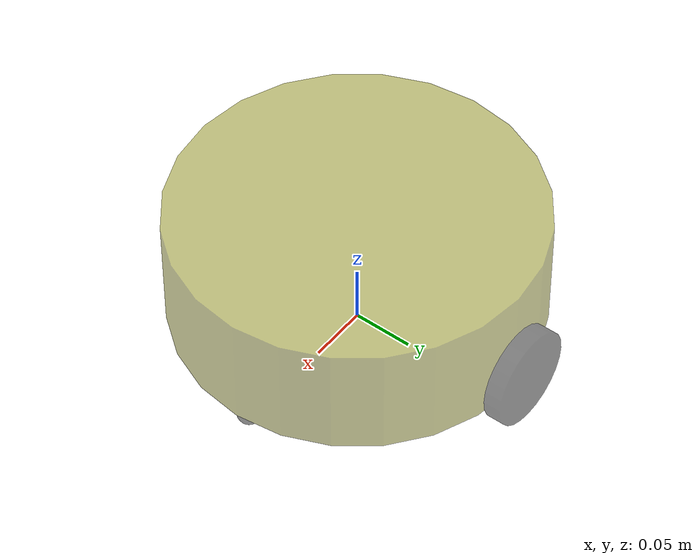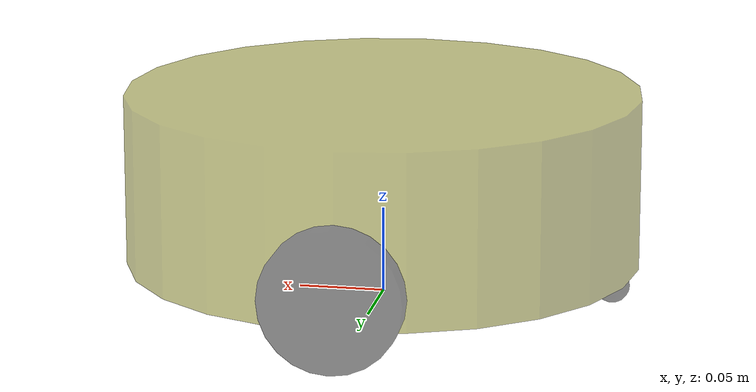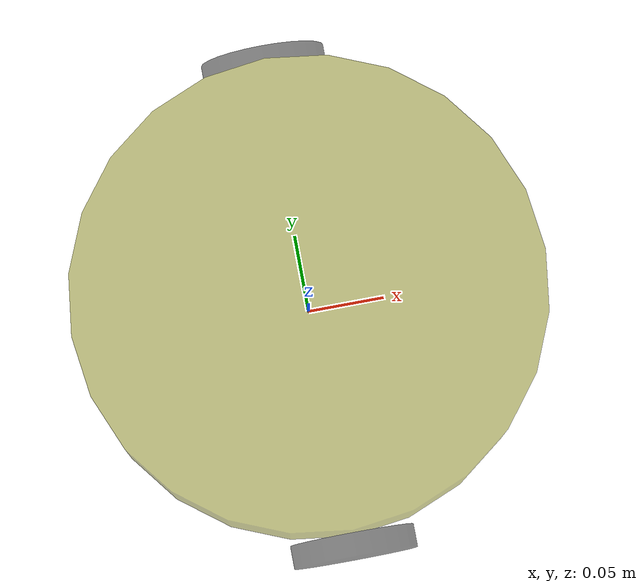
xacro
<robot name="mycar" xmlns:xacro="http://www.ros.org/wiki/xacro">

    <xacro:property name="footprint_radius" value="0.001" />
    <link name="footprint">
        <visual>
            <geometry>
                <sphere radius="${footprint_radius}" />
            </geometry>
            <origin xyz="0 0 0" rpy="0 0 0" />
            <material name="foot_color">
                <color rgba="0 0 1 1" />
            </material>
        </visual>
    </link>

    <xacro:property name="base_radius" value="0.15" />
    <xacro:property name="base_length" value="0.1" />
    <xacro:property name="base_mass" value="2" />
    <xacro:property name="lidi" value="0.02" />
    <xacro:property name="baselink_z" value="${base_length/2 + lidi}" />
    <link name="base_link">
        <visual>
            <geometry>
                <cylinder radius="${base_radius}" length="${base_length}" />
            </geometry>
            <origin xyz="0 0 0" rpy="0 0 0" />
            <material name="base_color">
                <color rgba="0.5 0.5 0 0.5" />
            </material>
        </visual>
        <collision>
            <geometry>
                <cylinder radius="${base_radius}" length="${base_length}" />
            </geometry>
            <origin xyz="0 0 0" rpy="0 0 0" />
        </collision>
        <xacro:cylinder_inertial_matrix m="${base_mass}" r="${base_radius}" h="${base_length}" />

    </link>
    <gazebo reference="base_link">
        <material>Gazebo/Yellow</material>
    </gazebo>

    <joint name="foot2base" type="fixed">
        <parent link="footprint" />
        <child link="base_link" />
        <origin xyz="0 0 ${baselink_z}" rpy="0 0 0" />
    </joint>

    <xacro:property name="wheel_radius" value="0.04" />
    <xacro:property name="wheel_length" value="0.015" />
    <xacro:property name="wheel_mass" value="0.2" />
    <xacro:property name="wheel_joint_y" value="${base_radius + wheel_length/2}" />
    <xacro:property name="wheel_joint_z" value="${(base_length/2 + lidi - wheel_radius) * (-1)}" />

    <xacro:macro name="wheel_func" params="wheel_name flag">
        <link name="${wheel_name}_wheel">
            <visual>
                <geometry>
                    <cylinder radius="${wheel_radius}" length="${wheel_length}" />
                </geometry>
                <origin xyz="0 0 0" rpy="1.5708 0 0" />
                <material name="wheel_color">
                    <color rgba="0 0 0 0.5" />
                </material>
            </visual>
            <collision>
                <geometry>
                    <cylinder radius="${wheel_radius}" length="${wheel_length}" />
                </geometry>
                <origin xyz="0 0 0" rpy="1.5708 0 0" />
            </collision>
            <xacro:cylinder_inertial_matrix m="${wheel_mass}" r="${wheel_radius}" h="${wheel_length}" />
        </link>
        <gazebo reference="${wheel_name}_wheel">
            <material>Gazebo/Black</material>
        </gazebo>
        <joint name="${wheel_name}2base" type="continuous">
            <parent link="base_link" />
            <child link="${wheel_name}_wheel" />
            <origin xyz="0 ${flag * wheel_joint_y} ${wheel_joint_z}" />
            <axis xyz="0 1 0" />
        </joint>
    </xacro:macro>

    <xacro:wheel_func wheel_name="left" flag="1" />
    <xacro:wheel_func wheel_name="right" flag="-1" />

    <xacro:property name="small_wheel_radius" value="0.01" />
    <xacro:property name="small_wheel_mass" value="0.05" />
    <xacro:property name="small_wheel_joint_x" value="${base_radius * 0.9}" />
    <xacro:property name="small_wheel_joint_z" value="${(base_length/2 + lidi - small_wheel_radius) * (-1)}" />
    <xacro:macro name="small_wheel_func" params="small_wheel_name flag" >
        <link name="${small_wheel_name}_wheel">
            <visual>
                <geometry>
                    <sphere radius="${small_wheel_radius}"  />
                </geometry>
                <origin xyz="0 0 0" rpy="0 0 0" />
                <material name="wheel_color">
                    <color rgba="0 0 0 0.5" />
                </material>
            </visual>
            <collision>
                <geometry>
                    <sphere radius="${small_wheel_radius}"  />
                </geometry>
                <origin xyz="0 0 0" rpy="0 0 0" />
            </collision>
            <xacro:sphere_inertial_matrix m="${small_wheel_mass}" r="${small_wheel_radius}" />
        </link>
        <gazebo reference="${small_wheel_name}_wheel">
            <material>Gazebo/Red</material>
        </gazebo>
        <joint name="${small_wheel_name}2base" type="continuous">
            <parent link="base_link" />
            <child link="${small_wheel_name}_wheel" />
            <origin xyz="${flag * small_wheel_joint_x } 0 ${small_wheel_joint_z}" />
            <axis xyz="1 1 1" />
        </joint>
    </xacro:macro>
    <xacro:small_wheel_func small_wheel_name="front" flag="1" />
    <xacro:small_wheel_func small_wheel_name="back" flag="-1" />

</robot>
